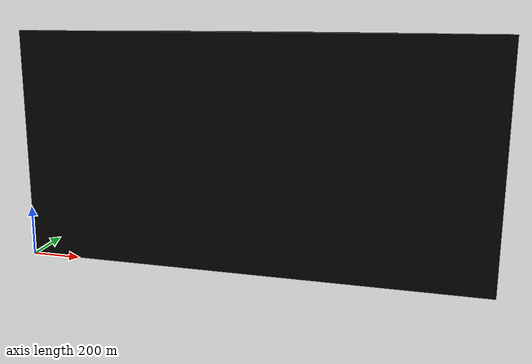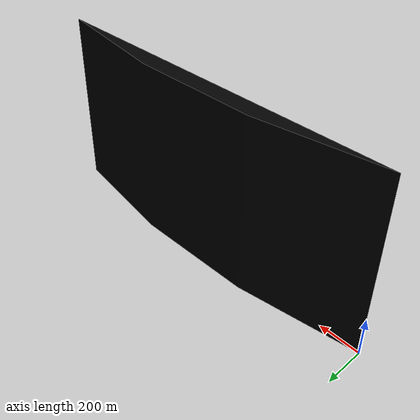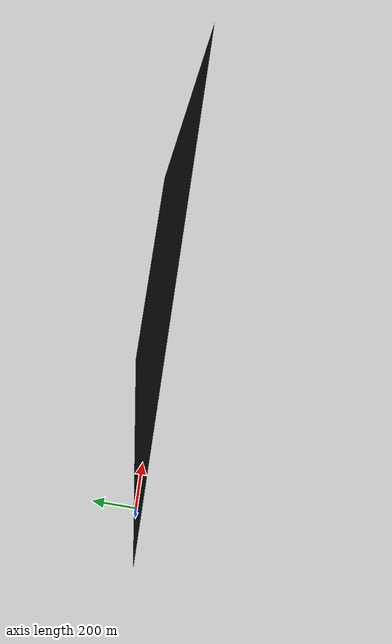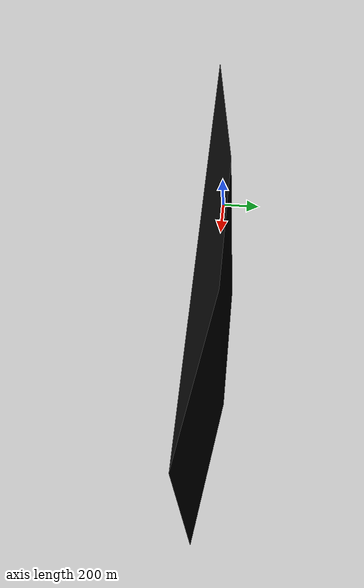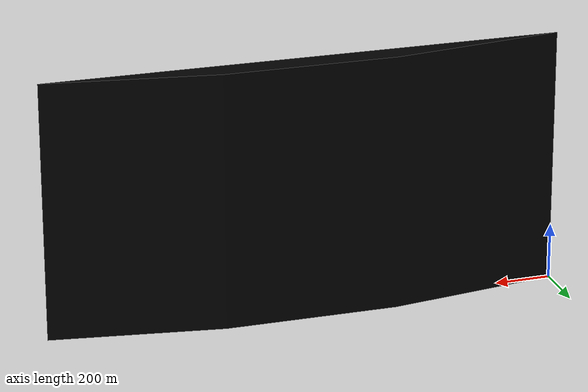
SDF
<?xml version="1.0" ?>
<sdf version="1.7">
    <model name="ramp">
        <static>true</static>
        <link name="link">
            <pose>0 0 0 0 0 0</pose>
            <visual name="visual">
                <geometry>
                    <mesh>
                        <uri>model://ramp/meshes/ramp.stl</uri>
                    </mesh>
                </geometry>
                <!-- Add a material with a black color -->
                <material>
                    <ambient>0 0 0 1</ambient>
                    <diffuse>0 0 0 1</diffuse>
                </material>
            </visual>
        </link>
    </model>
</sdf>
